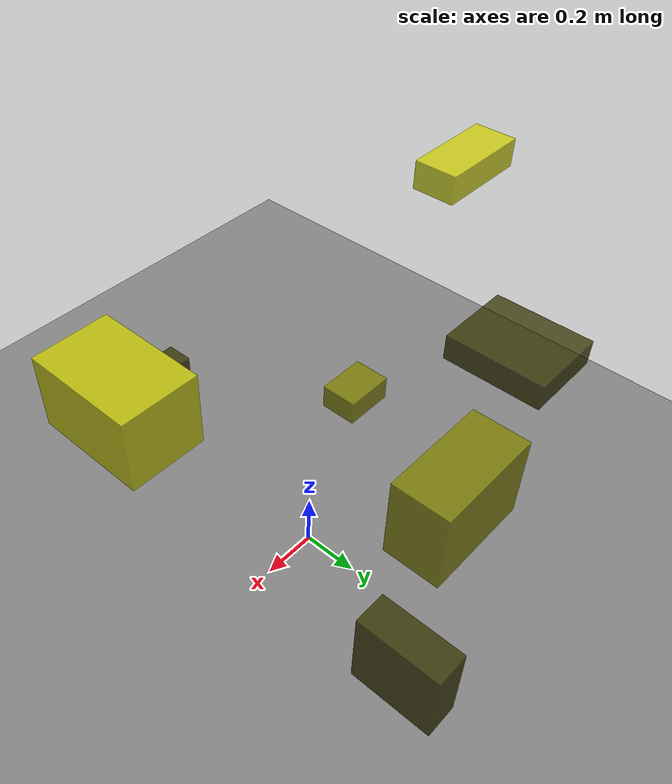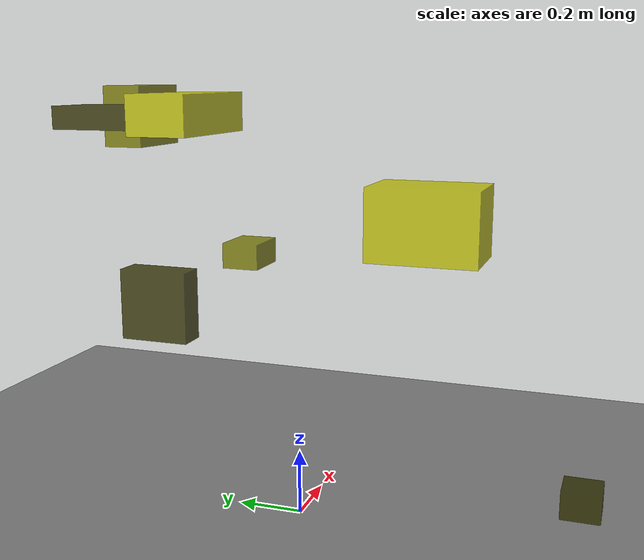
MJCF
<?xml version="1.0"?>
<mujoco model="obstacle_scene">
  <compiler angle="radian" coordinate="local"/>
  <option timestep="0.001" gravity="0 0 -9.81"/>

  <asset>
    <material name="obstacle_mat" rgba="0.8 0.8 0.0 0.8"/>
    <material name="ground_mat" rgba="0.5 0.5 0.5 1"/>
  </asset>

  <worldbody>
    <!-- Ground plane -->
    <geom name="ground" type="plane" size="3 3 0.1" material="ground_mat"/>

    <!-- Obstacles -->
    <body name="obstacle_0" pos="-0.121150 -0.842620 0.225625">
      <geom name="obs_0" type="box" size="0.053598 0.052947 0.039472" rgba="0.2 0.2 0.0 0.8"/>
    </body>
    <body name="obstacle_1" pos="0.412118 0.739903 1.191485">
      <geom name="obs_1" type="box" size="0.134400 0.068163 0.102738" rgba="0.5 0.5 0.0 0.8"/>
    </body>
    <body name="obstacle_2" pos="-0.610250 0.041720 1.243813">
      <geom name="obs_2" type="box" size="0.151413 0.069101 0.045198" rgba="0.8 0.8 0.0 0.8"/>
    </body>
    <body name="obstacle_3" pos="0.425881 0.703045 0.511806">
      <geom name="obs_3" type="box" size="0.052375 0.128244 0.129659" rgba="0.2 0.2 0.0 0.8"/>
    </body>
    <body name="obstacle_4" pos="-0.006439 0.155449 0.811995">
      <geom name="obs_4" type="box" size="0.073176 0.054026 0.037009" rgba="0.5 0.5 0.0 0.8"/>
    </body>
    <body name="obstacle_5" pos="0.493429 -0.274951 0.850319">
      <geom name="obs_5" type="box" size="0.128242 0.189318 0.124947" rgba="0.8 0.8 0.0 0.8"/>
    </body>
    <body name="obstacle_6" pos="-0.039671 0.592028 1.205382">
      <geom name="obs_6" type="box" size="0.105672 0.129556 0.034149" rgba="0.2 0.2 0.0 0.8"/>
    </body>
  </worldbody>
</mujoco>
